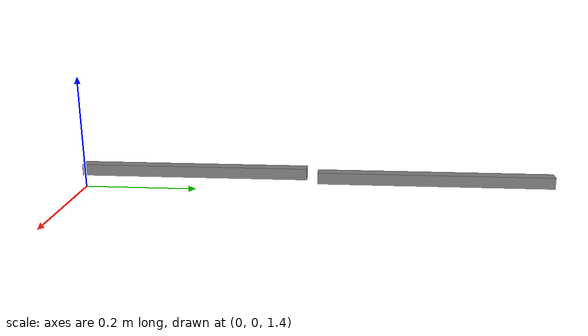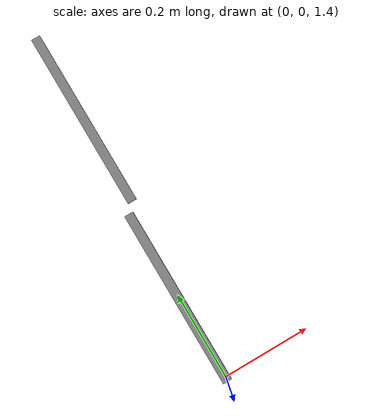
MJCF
<mujoco model="ur5gripper">
    <compiler angle="radian"
              inertiafromgeom="true"
              texturedir="textures/"
              meshdir="mesh/visual/"/>
    <option timestep="1e-3"
            iterations="10"
            tolerance="1e-10"
            impratio="20"/>
    <size njmax="600" nconmax="150" nstack="300000"/>

    <default>
        <site rgba="0.8 0.6 0.7 0.3" type="ellipsoid" group="3"/>
        <geom contype='1' conaffinity='1' condim='4'  margin="1e-3" solref=".01 1" solimp=".99 .99 .01" />
        <joint armature="0.01" damping="15"/>
    </default>

    <visual>
        <map fogstart="3" fogend="5" znear="0.05"/>
        <quality shadowsize="2048"/>
        <scale framelength="0.1"
               framewidth="0.005"
               contactwidth="0.1"
               contactheight="0.005"
               forcewidth="0.01"
               />
    </visual>

  <worldbody>
    <light diffuse=".7 .7 .7" pos="0 0 4" dir="0 0 -1"/>
    <light diffuse=".7 .7 .7" pos="1.5 1.5 4" dir="0 0 -1"/>
    <light diffuse=".7 .7 .7" pos="1.5 -1.5 4" dir="0 0 -1"/>
    <light diffuse=".7 .7 .7" pos="-1.5 1.5 4" dir="0 0 -1"/>
    <light diffuse=".7 .7 .7" pos="-1.5 -1.5 4" dir="0 0 -1"/>
    <geom name='floor'  pos='0 0 0' size='2.5 2.5 0.1'  type='plane' />

    <body name="box" pos="0 0 1.435">
      <joint name='joint_1' type='hinge' axis='1 0 0' />
      <geom type='box' size='0.01 0.2 0.01' pos='0 0.2 0' />
      <body name='2ndStick' pos='0.02 0.42 0' >
        <joint name='joint_2' type='hinge' axis='1 0 0' pos='0 0 0' />
        <geom type='box' size='0.01 0.2 0.01' pos='0 0.2 0' />
      </body>
    </body>

  </worldbody>

  <actuator>
    <position name='p1' joint='joint_1' kp="500" />
    <position name='p2' joint='joint_2' kp="100" />
    <velocity name='v1' joint='joint_1' kv="10" />
    <velocity name='v2' joint='joint_2' kv="1" />
  </actuator>
</mujoco>
